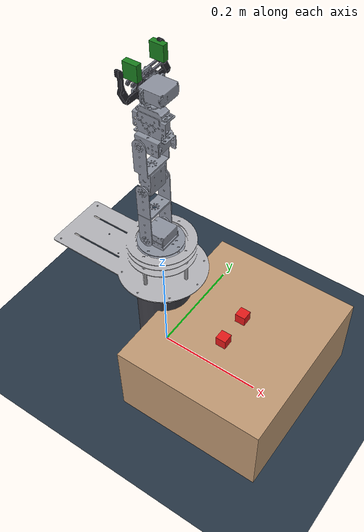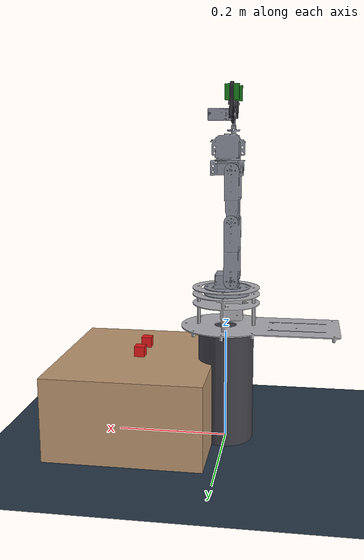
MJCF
<!--  Two-cube STACKING scene for the real LeArm (MuJoCo 3.x / MJCF)        -->
<!--  Sibling of learm_scene_dice_sort.xml, but:                           -->
<!--    * two IDENTICAL red cubes ('cube_a', 'cube_b') -- no colour cue.    -->
<!--    * NO bins / no mocap bodies (the goal is to stack one cube on the   -->
<!--      other, not to drop them anywhere).                                -->
<!--  Everything else (arm chain, gripper, cameras, table, pedestal,       -->
<!--  collision filtering, actuators, equality couplings) is unchanged      -->
<!--  from the dice-sort scene.                                            -->
<mujoco model="learm_cube_stack">

  <compiler angle="radian" meshdir="meshes" autolimits="true"/>
  <option timestep="0.002" gravity="0 0 -9.81" integrator="implicit"
          iterations="200" noslip_iterations="10"/>

  <visual>
    <global offwidth="1280" offheight="720"/>
    <quality shadowsize="2048"/>
    <headlight diffuse="0.6 0.6 0.6" ambient="0.4 0.4 0.4"/>
  </visual>

  <default>
    <default class="arm">
      <joint type="hinge" damping="0.6" armature="0.01" range="-1.5708 1.5708"/>
      <geom  type="mesh" rgba="0.55 0.57 0.62 1" contype="0" conaffinity="0"/>
    </default>

    <default class="finger">
      <joint type="hinge" damping="0.2" armature="0.005"/>
      <geom  type="mesh" rgba="0.15 0.15 0.18 1" contype="0" conaffinity="0"/>
    </default>

    <default class="pad">
      <geom type="box" rgba="0.1 0.5 0.12 1" friction="3.0 0.1 0.002"
            condim="4" solimp="0.999 0.9999 0.0001 0.5 2"
            contype="4" conaffinity="1"/>
    </default>

    <default class="env">
      <geom contype="2" conaffinity="1"/>
    </default>
  </default>

  <asset>
    <texture name="grid" type="2d" builtin="checker"
             rgb1="0.20 0.28 0.36" rgb2="0.10 0.14 0.18" width="300" height="300"/>
    <material name="grid"  texture="grid" texrepeat="8 8" reflectance="0.1"/>
    <material name="table" rgba="0.75 0.60 0.45 1"/>

    <material name="cube_red" rgba="0.90 0.10 0.10 1"/>

    <mesh name="base"     file="base.stl"/>
    <mesh name="shoulder" file="shoulder.stl"/>
    <mesh name="humerus"  file="humerus.stl"/>
    <mesh name="forearm"  file="forearm.stl"/>
    <mesh name="wrist"    file="wrist.stl"/>
    <mesh name="hand"     file="hand.stl"/>
    <mesh name="carpalL"  file="carpal-left.stl"/>
    <mesh name="carpalR"  file="carpal-right.stl"/>
    <mesh name="tendon"   file="tendon.stl"/>
    <mesh name="finger"   file="finger.stl"/>
  </asset>

  <worldbody>
    <!-- Two key lights so a single light's random dim doesn't put the back of
         the scene into deep shadow. -->
    <light pos="0.20 0.0 1.2" dir="0 0 -1" diffuse="0.7 0.7 0.7"/>
    <light pos="0.20 -0.4 0.8" dir="0 0.4 -1" diffuse="0.4 0.4 0.4"/>
    <geom name="floor" class="env" type="plane" size="2 2 0.1" material="grid"/>

    <camera name="policy_cam" pos="0.35 -0.25 0.35" xyaxes="0.79616 0.60508 -0.00000 -0.32506 0.42771 0.84345"/>
    <camera name="demo_cam"   pos="0.30 -0.50 0.60" xyaxes="0.93979 0.34174 -0.00000 -0.20831 0.57286 0.79274"/>

    <!-- Work table: top at z = 0.15 m, spans x in [0.02, 0.30], y in [-0.16, 0.16]. -->
    <body name="table" pos="0.16 0 0.075">
      <geom name="table_top" class="env" type="box" size="0.14 0.16 0.075" material="table"/>
    </body>

    <geom name="pedestal" type="cylinder" size="0.05 0.105" pos="0 0 0.105"
          rgba="0.25 0.25 0.28 1" contype="0" conaffinity="0"/>

    <!--  THE LeArm                                                          -->
    <body name="base_link" pos="0 0 0.21" gravcomp="1">
      <geom type="mesh" mesh="base" rgba="0.7 0.7 0.72 1" contype="0" conaffinity="0"/>

      <body name="shoulder_link" pos="0 0 0.059" gravcomp="1">
        <joint name="shoulder_pan" class="arm" axis="0 0 1"/>
        <geom class="arm" mesh="shoulder"/>

        <body name="humerus_link" pos="-0.010 0 0.028" gravcomp="1">
          <joint name="shoulder_lift" class="arm" axis="0 1 0"/>
          <geom class="arm" mesh="humerus"/>

          <body name="forearm_link" pos="0 0 0.105" gravcomp="1">
            <joint name="elbow" class="arm" axis="0 -1 0"/>
            <geom class="arm" mesh="forearm"/>

            <body name="wrist_link" pos="0 0 0.090" gravcomp="1">
              <joint name="wrist_flex" class="arm" axis="0 1 0"/>
              <geom class="arm" mesh="wrist"/>

              <body name="hand_link" pos="0 0 0.060" gravcomp="1">
                <joint name="wrist_roll" class="arm" axis="0 0 1"/>
                <geom class="arm" mesh="hand"/>

                <camera name="wrist_cam" pos="0 0 0.05" xyaxes="1 0 0 0 -1 0"/>
                <site name="pinch" pos="0 0 0.095" size="0.005" rgba="1 1 0 0" group="3"/>

                <body name="grip_left_link" pos="0 0.015 0.030" euler="-1.5708 0 0" gravcomp="1">
                  <joint name="grip_left" class="finger" axis="-1 0 0" range="-1.57 0"/>
                  <geom class="finger" mesh="carpalL"/>
                  <body name="finger_left_link" pos="0 0 0.030" euler="1.5708 0 0" gravcomp="1">
                    <joint name="finger_left" class="finger" axis="-1 0 0" limited="false"/>
                    <geom class="finger" mesh="finger"/>
                    <geom name="pad_l" class="pad" size="0.012 0.005 0.013" pos="0 -0.016 0.038"/>
                  </body>
                </body>

                <body name="grip_right_link" pos="0 -0.015 0.030" euler="1.5708 0 0" gravcomp="1">
                  <joint name="grip_right" class="finger" axis="-1 0 0" limited="false"/>
                  <geom class="finger" mesh="carpalR"/>
                  <body name="finger_right_link" pos="0 0 0.030" euler="-1.5708 0 0" gravcomp="1">
                    <joint name="finger_right" class="finger" axis="-1 0 0" limited="false"/>
                    <geom class="finger" mesh="finger"/>
                    <geom name="pad_r" class="pad" size="0.012 0.005 0.013" pos="0 0.016 0.038"/>
                  </body>
                </body>

                <body name="tendon_left_link" pos="0 0.005 0.050" euler="-1.5708 0 0" gravcomp="1">
                  <joint name="tendon_left" class="finger" axis="-1 0 0" limited="false"/>
                  <geom type="mesh" mesh="tendon" rgba="0.4 0.4 0.45 1" contype="0" conaffinity="0"/>
                </body>
                <body name="tendon_right_link" pos="0 -0.005 0.050" euler="1.5708 0 0" gravcomp="1">
                  <joint name="tendon_right" class="finger" axis="-1 0 0" limited="false"/>
                  <geom type="mesh" mesh="tendon" rgba="0.4 0.4 0.45 1" contype="0" conaffinity="0"/>
                </body>
              </body>
            </body>
          </body>
        </body>
      </body>
    </body>

    <!--  Two identical red cubes (1.9 cm side), free joints.               -->
    <body name="cube_a" pos="0.155 -0.040 0.163">
      <freejoint name="cube_a_free"/>
      <geom name="cube_a_geom" type="box" size="0.0095 0.0095 0.0095" material="cube_red"
            friction="3.0 0.1 0.002" condim="4" density="1312"
            solimp="0.999 0.9999 0.0001 0.5 2" contype="1" conaffinity="3"/>
    </body>

    <body name="cube_b" pos="0.155 0.020 0.163">
      <freejoint name="cube_b_free"/>
      <geom name="cube_b_geom" type="box" size="0.0095 0.0095 0.0095" material="cube_red"
            friction="3.0 0.1 0.002" condim="4" density="1312"
            solimp="0.999 0.9999 0.0001 0.5 2" contype="1" conaffinity="3"/>
    </body>

  </worldbody>

  <equality>
    <joint joint1="grip_right"   joint2="grip_left" polycoef="0 -1 0 0 0"/>
    <joint joint1="tendon_left"  joint2="grip_left" polycoef="0  1 0 0 0"/>
    <joint joint1="tendon_right" joint2="grip_left" polycoef="0 -1 0 0 0"/>
    <joint joint1="finger_left"  joint2="grip_left" polycoef="0 -1 0 0 0"/>
    <joint joint1="finger_right" joint2="grip_left" polycoef="0  1 0 0 0"/>
  </equality>

  <actuator>
    <position name="a_pan"   joint="shoulder_pan"  kp="20" kv="2"  forcerange="-20 20" ctrlrange="-1.57 1.57"/>
    <position name="a_lift"  joint="shoulder_lift" kp="20" kv="2"  forcerange="-20 20" ctrlrange="-1.57 1.57"/>
    <position name="a_elbow" joint="elbow"         kp="20" kv="2"  forcerange="-20 20" ctrlrange="-1.57 1.57"/>
    <position name="a_wflex" joint="wrist_flex"    kp="10" kv="1"  forcerange="-15 15" ctrlrange="-1.57 1.57"/>
    <position name="a_wroll" joint="wrist_roll"    kp="10" kv="1"  forcerange="-15 15" ctrlrange="-1.57 1.57"/>
    <position name="a_grip"  joint="grip_left"     kp="25" kv="1.5"  forcerange="-12 12" ctrlrange="-1.57 0"/>
  </actuator>

</mujoco>
